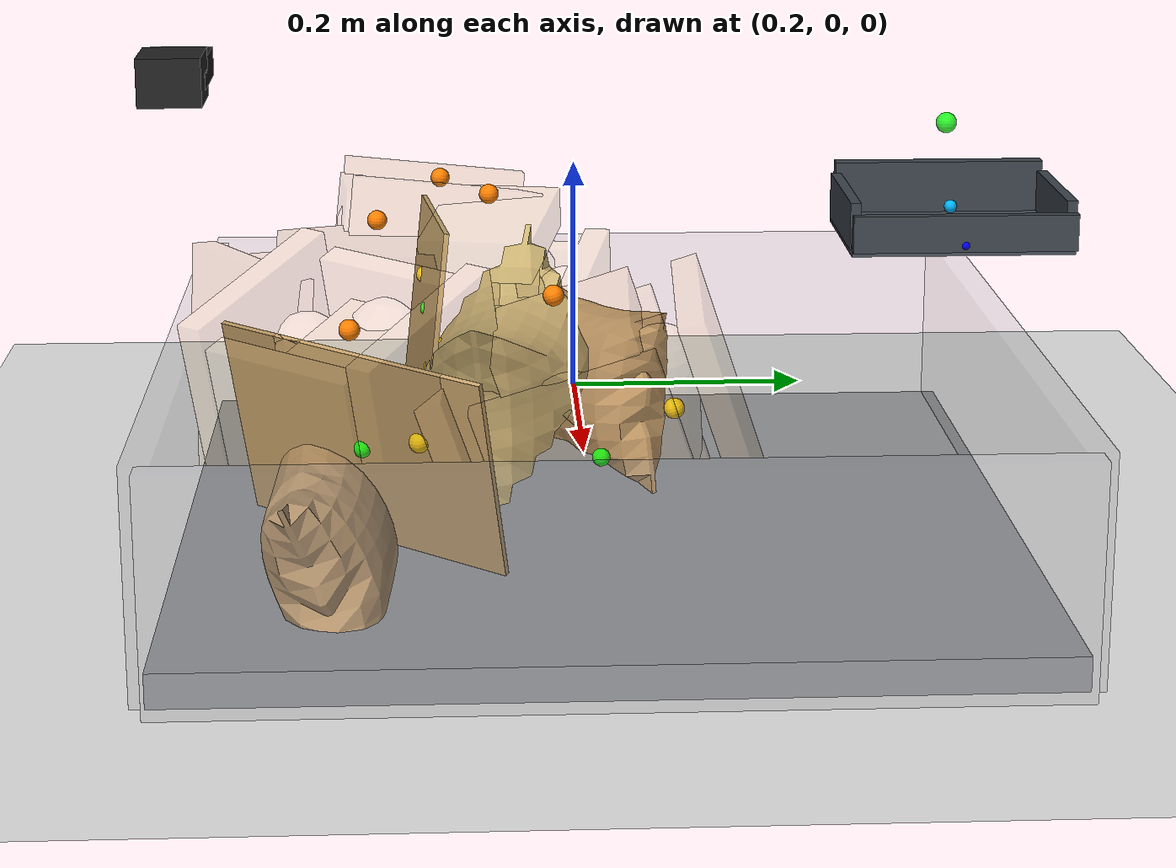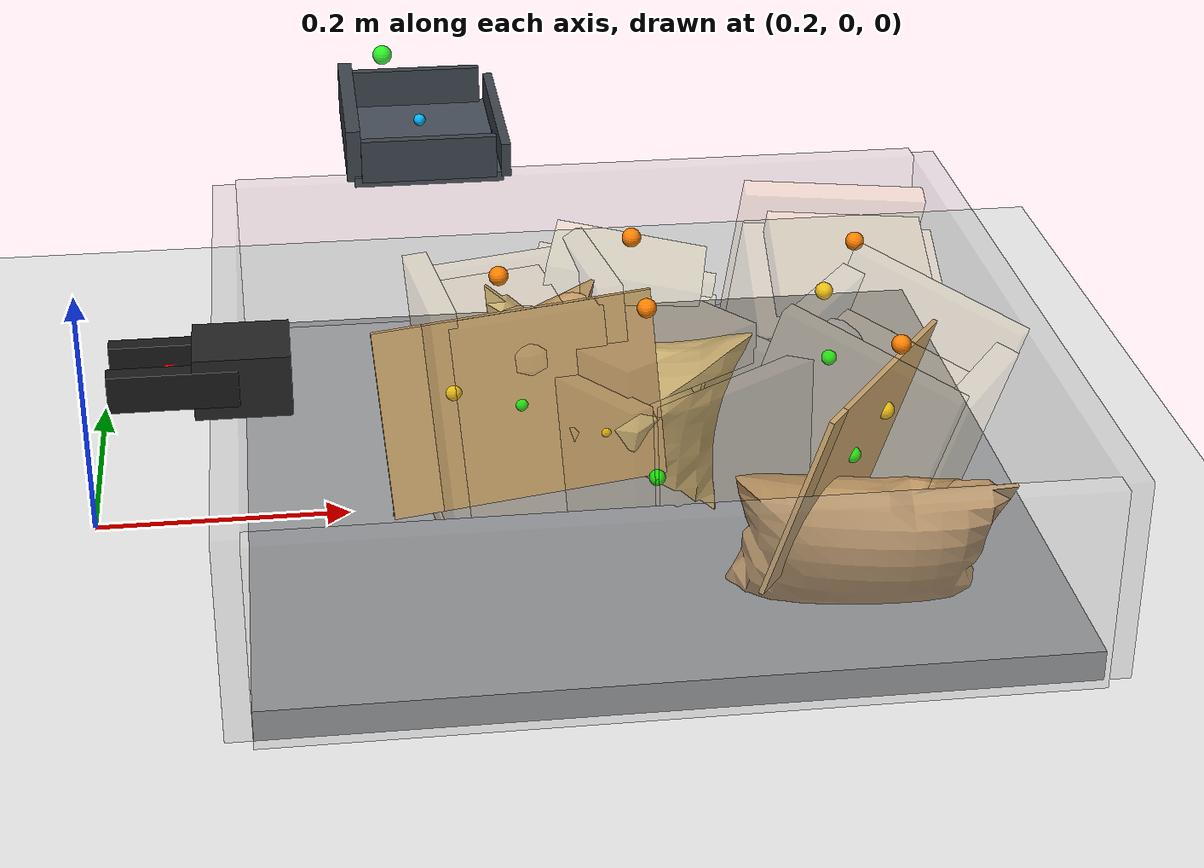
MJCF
<mujoco model="side_bulged_unstable_side_exposed_ep0_try0">
  <compiler angle="radian" coordinate="local" inertiafromgeom="true" meshdir="D:/Michael/2025/01.Research/01.Parceldetection/16.Pybullet/bullet3-master (1)/bullet3-master/examples/pybullet/examples/DeformableTest/Sackcodex2/object"/>
  <option timestep="0.002" gravity="0 0 -9.81" integrator="implicitfast" iterations="100" tolerance="1e-8"/>
  <size memory="768M" nconmax="12000"/>

  <visual>
    <global azimuth="128" elevation="-20"/>
    <headlight ambient="0.34 0.34 0.34" diffuse="0.78 0.78 0.78" specular="0.15 0.15 0.15"/>
    <rgba haze="0.11 0.13 0.18 1"/>
  </visual>

  <default>
    <geom condim="4" friction="1.15 0.03 0.01" margin="0.003" solimp="0.93 0.98 0.003" solref="0.012 1"/>
    <joint damping="1.2" armature="0.002"/>
    <position kp="2500" forcelimited="true" forcerange="-420 420"/>
    <motor ctrllimited="true"/>
  </default>

  <asset>
    <mesh name="sack_0_visual_mesh" file="sack3.obj" scale="0.0717 0.0717 0.0761"/>
    <mesh name="sack_1_visual_mesh" file="sack3.obj" scale="0.0722 0.0722 0.0759"/>
    <mesh name="sack_2_visual_mesh" file="sack2.obj" scale="0.0721 0.0721 0.0753"/>
    <mesh name="sack_3_visual_mesh" file="sack7.obj" scale="0.0738 0.0738 0.0802"/>
    <mesh name="sack_4_visual_mesh" file="sack2.obj" scale="0.0702 0.0702 0.0726"/>
  </asset>

  <worldbody>
    <light name="key" pos="0.85 0.15 1.8" dir="-0.2 -0.1 -1" directional="true"/>
    <geom name="floor" type="plane" size="2 2 0.1" rgba="0.93 0.93 0.93 1"/>
    <geom name="work_pad" type="box" pos="0.62 0 0.012" size="0.30 0.30 0.012" rgba="0.60 0.61 0.62 1" friction="1.4 0.05 0.01"/>
    <geom name="corral_front" type="box" pos="0.93 0.00 0.08" size="0.010 0.30 0.08" rgba="0.55 0.55 0.58 0.22" friction="1.0 0.03 0.01"/>
    <geom name="corral_back" type="box" pos="0.31 0.00 0.08" size="0.010 0.30 0.08" rgba="0.55 0.55 0.58 0.18" friction="1.0 0.03 0.01"/>
    <geom name="corral_left" type="box" pos="0.62 0.30 0.08" size="0.30 0.010 0.08" rgba="0.55 0.55 0.58 0.14" friction="1.0 0.03 0.01"/>
    <geom name="corral_right" type="box" pos="0.62 -0.30 0.08" size="0.30 0.010 0.08" rgba="0.55 0.55 0.58 0.14" friction="1.0 0.03 0.01"/>
    <camera name="overview" pos="1.22 0.00 0.92" xyaxes="0 1 0 -0.46 0 0.88"/>

    <body name="gripper_mocap" mocap="true" pos="0.36 -0.33 0.30" quat="0.707107 0 -0.707107 0"/>
    <body name="scoop_mocap" mocap="true" pos="0.42 0.28 0.20" quat="1 0 0 0"/>

    <body name="gripper_ctrl_base" pos="0.36 -0.33 0.30">
      <inertial pos="0 0 0" mass="0.001" diaginertia="1e-6 1e-6 1e-6"/>
      <joint name="gripper_ctrl_x" type="slide" axis="1 0 0" limited="true" range="0.20 1.00"/>
      <body name="gripper_ctrl_y_body">
        <inertial pos="0 0 0" mass="0.001" diaginertia="1e-6 1e-6 1e-6"/>
        <joint name="gripper_ctrl_y" type="slide" axis="0 1 0" limited="true" range="-0.60 0.60"/>
        <body name="gripper_ctrl_z_body">
          <inertial pos="0 0 0" mass="0.001" diaginertia="1e-6 1e-6 1e-6"/>
          <joint name="gripper_ctrl_z" type="slide" axis="0 0 1" limited="true" range="0.04 0.70"/>
          <body name="gripper_ctrl_yaw_body">
            <inertial pos="0 0 0" mass="0.001" diaginertia="1e-6 1e-6 1e-6"/>
            <joint name="gripper_ctrl_yaw" type="hinge" axis="0 0 1" limited="true" range="-3.1416 3.1416"/>
            <body name="gripper_ctrl_pitch_body">
              <inertial pos="0 0 0" mass="0.001" diaginertia="1e-6 1e-6 1e-6"/>
              <joint name="gripper_ctrl_pitch" type="hinge" axis="0 1 0" limited="true" range="-3.1416 3.1416"/>
              <body name="gripper_ctrl_roll_body">
                <inertial pos="0 0 0" mass="0.001" diaginertia="1e-6 1e-6 1e-6"/>
                <joint name="gripper_ctrl_roll" type="hinge" axis="1 0 0" limited="true" range="-3.1416 3.1416"/>
              </body>
            </body>
          </body>
        </body>
      </body>
    </body>

    <body name="scoop_ctrl_base" pos="0.42 0.28 0.20">
      <inertial pos="0 0 0" mass="0.001" diaginertia="1e-6 1e-6 1e-6"/>
      <joint name="scoop_ctrl_x" type="slide" axis="1 0 0" limited="true" range="0.20 1.00"/>
      <body name="scoop_ctrl_y_body">
        <inertial pos="0 0 0" mass="0.001" diaginertia="1e-6 1e-6 1e-6"/>
        <joint name="scoop_ctrl_y" type="slide" axis="0 1 0" limited="true" range="-0.60 0.60"/>
        <body name="scoop_ctrl_z_body">
          <inertial pos="0 0 0" mass="0.001" diaginertia="1e-6 1e-6 1e-6"/>
          <joint name="scoop_ctrl_z" type="slide" axis="0 0 1" limited="true" range="0.04 0.70"/>
          <body name="scoop_ctrl_yaw_body">
            <inertial pos="0 0 0" mass="0.001" diaginertia="1e-6 1e-6 1e-6"/>
            <joint name="scoop_ctrl_yaw" type="hinge" axis="0 0 1" limited="true" range="-3.1416 3.1416"/>
            <body name="scoop_ctrl_pitch_body">
              <inertial pos="0 0 0" mass="0.001" diaginertia="1e-6 1e-6 1e-6"/>
              <joint name="scoop_ctrl_pitch" type="hinge" axis="0 1 0" limited="true" range="-3.1416 3.1416"/>
              <body name="scoop_ctrl_roll_body">
                <inertial pos="0 0 0" mass="0.001" diaginertia="1e-6 1e-6 1e-6"/>
                <joint name="scoop_ctrl_roll" type="hinge" axis="1 0 0" limited="true" range="-3.1416 3.1416"/>
              </body>
            </body>
          </body>
        </body>
      </body>
    </body>

    <body name="gripper_tool" pos="0.36 -0.33 0.30" quat="0.707107 0 -0.707107 0">
      <freejoint name="gripper_tool_free"/>
      <inertial pos="0 0 0.04" mass="0.08" diaginertia="0.0002 0.0002 0.0002"/>
      <geom name="gripper_palm" type="box" pos="0 0 0.030" size="0.020 0.026 0.030" rgba="0.14 0.14 0.14 1"/>
      <body name="left_finger_body" pos="0 0 0.072">
        <joint name="left_finger_slide" type="slide" axis="0 1 0" limited="true" range="0.010 0.040" damping="12"/>
        <geom name="left_finger_geom" type="box" pos="0 0.020 0" size="0.012 0.006 0.040" rgba="0.10 0.10 0.10 1" friction="2.2 0.05 0.01"/>
      </body>
      <body name="right_finger_body" pos="0 0 0.072">
        <joint name="right_finger_slide" type="slide" axis="0 -1 0" limited="true" range="0.010 0.040" damping="12"/>
        <geom name="right_finger_geom" type="box" pos="0 -0.020 0" size="0.012 0.006 0.040" rgba="0.10 0.10 0.10 1" friction="2.2 0.05 0.01"/>
      </body>
      <site name="gripper_pinch_site" pos="0 0 0.074" size="0.006" rgba="1 0 0 1"/>
    </body>

    <body name="scoop_tool" pos="0.42 0.28 0.20" quat="1 0 0 0">
      <freejoint name="scoop_tool_free"/>
      <inertial pos="0 0 0.02" mass="0.10" diaginertia="0.0003 0.0003 0.0003"/>
      <geom name="scoop_plate" type="box" pos="0.062 0 0" size="0.062 0.085 0.004" rgba="0.28 0.31 0.35 1" friction="1.7 0.05 0.01"/>
      <geom name="scoop_lip" type="box" pos="0.126 0 0.014" size="0.004 0.085 0.014" rgba="0.24 0.27 0.30 1" friction="1.7 0.05 0.01"/>
      <geom name="scoop_left_rail" type="box" pos="0.062 0.082 0.018" size="0.056 0.004 0.018" rgba="0.24 0.27 0.30 1"/>
      <geom name="scoop_right_rail" type="box" pos="0.062 -0.082 0.018" size="0.056 0.004 0.018" rgba="0.24 0.27 0.30 1"/>
      <geom name="scoop_backstop" type="box" pos="0.000 0 0.022" size="0.006 0.082 0.022" rgba="0.24 0.27 0.30 1"/>
      <site name="scoop_tip_site" pos="0.126 0 0.005" size="0.005" rgba="0 0 1 1"/>
      <site name="scoop_center_site" pos="0.060 0 0.020" size="0.005" rgba="0 0.7 1 1"/>
      <site name="score_overlay_site" pos="0.030 0 0.080" size="0.008" rgba="0 1 0 0.8"/>
    </body>

    <body name="sack_0" pos="0.6178 -0.1695 0.1123" euler="-0.0496 -0.0356 -2.5774">
      <freejoint name="sack_0_free"/>

      <geom name="sack_0_visual" type="mesh" mesh="sack_0_visual_mesh" rgba="0.760 0.600 0.400 0.92" contype="0" conaffinity="0"/>
      <site name="sack_0_center_site" pos="0 0 0.000" size="0.006" rgba="0 1 0 1"/>
      <site name="sack_0_top_site" pos="0 -0.0060 0.1314" size="0.007" rgba="1 0.5 0 1"/>
      <site name="sack_0_side_site" pos="0.0000 -0.0581 0.018" size="0.007" rgba="1 0.8 0 1"/>

      <geom name="sack_0_core_geom" type="ellipsoid" pos="0 0 0.0059" size="0.0449 0.0353 0.0790" mass="0.9422" rgba="0.760 0.600 0.400 0.12" friction="1.0 0.03 0.01"/>
      <geom name="sack_0_core_front" type="capsule" fromto="-0.0200 0 -0.0200 0.0450 0 0.0600" size="0.0307" mass="0.2243" rgba="0.760 0.600 0.400 0.10"/>
      <geom name="sack_0_core_left" type="capsule" fromto="-0.008 0.0468 -0.010 0.018 0.0648 0.060" size="0.0243" mass="0.4038" rgba="0.760 0.600 0.400 0.10"/>
      <geom name="sack_0_core_right" type="capsule" fromto="-0.006 -0.0468 -0.008 0.020 -0.0668 0.054" size="0.0223" mass="0.4038" rgba="0.760 0.600 0.400 0.10"/>

      <body name="sack_0_bottom_support_proxy_body" pos="0 0.0071 -0.1014">
        <joint name="sack_0_bottom_x" type="slide" axis="1 0 0" limited="true" range="-0.012 0.012" damping="18" stiffness="481.1"/>
        <joint name="sack_0_bottom_y" type="slide" axis="0 1 0" limited="true" range="-0.012 0.012" damping="18" stiffness="481.1"/>
        <joint name="sack_0_bottom_z" type="slide" axis="0 0 1" limited="true" range="-0.008 0.020" damping="24" stiffness="592.5"/>
        <geom name="sack_0_bottom_support_proxy" type="box" size="0.0757 0.0641 0.0100" mass="0.1795" rgba="0.760 0.600 0.400 0.34" friction="1.55 0.05 0.01"/>
      </body>

      <body name="sack_0_top_grasp_proxy_body" pos="0.0000 -0.0060 0.1014">
        <joint name="sack_0_top_x" type="slide" axis="1 0 0" limited="true" range="-0.018 0.018" damping="12" stiffness="184.9"/>
        <joint name="sack_0_top_y" type="slide" axis="0 1 0" limited="true" range="-0.018 0.018" damping="12" stiffness="184.9"/>
        <joint name="sack_0_top_z" type="slide" axis="0 0 1" limited="true" range="-0.040 0.010" damping="14" stiffness="137.0"/>
        <geom name="sack_0_top_grasp_proxy" type="box" size="0.0597 0.0481 0.0150" mass="0.1346" rgba="0.760 0.600 0.400 0.26" friction="2.2 0.05 0.01"/>
      </body>

      <body name="sack_0_left_side_proxy_body" pos="0 0.0949 0.010">
        <joint name="sack_0_left_side_slide" type="slide" axis="0 -1 0" limited="true" range="-0.028 0.016" damping="16" stiffness="243.7"/>
        <geom name="sack_0_left_side_proxy" type="box" size="0.0717 0.0090 0.0994" mass="0.1346" rgba="0.760 0.600 0.400 0.24"/>
      </body>

      <body name="sack_0_right_side_proxy_body" pos="0 -0.0909 0.010">
        <joint name="sack_0_right_side_slide" type="slide" axis="0 1 0" limited="true" range="-0.028 0.016" damping="16" stiffness="225.9"/>
        <geom name="sack_0_right_side_proxy" type="box" size="0.0717 0.0090 0.0994" mass="0.1346" rgba="0.760 0.600 0.400 0.24"/>
      </body>

      <body name="sack_0_front_proxy_body" pos="0.0657 0 0.000">
        <joint name="sack_0_front_slide" type="slide" axis="-1 0 0" limited="true" range="-0.022 0.012" damping="15" stiffness="230.6"/>
        <geom name="sack_0_front_support_proxy" type="box" size="0.0090 0.0641 0.0974" mass="0.1122" rgba="0.760 0.600 0.400 0.22"/>
      </body>

      <body name="sack_0_back_proxy_body" pos="-0.0657 0 0.000">
        <joint name="sack_0_back_slide" type="slide" axis="1 0 0" limited="true" range="-0.022 0.012" damping="15" stiffness="212.7"/>
        <geom name="sack_0_back_support_proxy" type="box" size="0.0090 0.0641 0.0974" mass="0.1122" rgba="0.760 0.600 0.400 0.22"/>
      </body>

      <body name="sack_0_shape_proxy_body" pos="0.0000 -0.0388 0.0330">
        <joint name="sack_0_bulge_y" type="slide" axis="0 1 0" limited="true" range="-0.020 0.020" damping="8" stiffness="85.9"/>
        <joint name="sack_0_bulge_z" type="slide" axis="0 0 1" limited="true" range="-0.014 0.028" damping="8" stiffness="89.4"/>
        <geom name="sack_0_shape_proxy" type="ellipsoid" size="0.0203 0.0165 0.0261" mass="0.0897" rgba="0.760 0.600 0.400 0.28"/>
      </body>
    </body>

    <body name="sack_1" pos="0.7800 -0.0058 0.1170" euler="0.3233 0.0572 -0.0670">
      <freejoint name="sack_1_free"/>

      <geom name="sack_1_visual" type="mesh" mesh="sack_1_visual_mesh" rgba="0.760 0.600 0.400 0.92" contype="0" conaffinity="0"/>
      <site name="sack_1_center_site" pos="0 0 0.000" size="0.006" rgba="0 1 0 1"/>
      <site name="sack_1_top_site" pos="0 0.0060 0.1186" size="0.007" rgba="1 0.5 0 1"/>
      <site name="sack_1_side_site" pos="0.0000 0.0572 0.018" size="0.007" rgba="1 0.8 0 1"/>

      <geom name="sack_1_core_geom" type="ellipsoid" pos="0 0 0.0058" size="0.0447 0.0349 0.0785" mass="0.9079" rgba="0.760 0.600 0.400 0.12" friction="1.0 0.03 0.01"/>
      <geom name="sack_1_core_front" type="capsule" fromto="-0.0200 0 -0.0200 0.0450 0 0.0600" size="0.0304" mass="0.2162" rgba="0.760 0.600 0.400 0.10"/>
      <geom name="sack_1_core_left" type="capsule" fromto="-0.008 0.0431 -0.010 0.018 0.0611 0.060" size="0.0242" mass="0.3891" rgba="0.760 0.600 0.400 0.10"/>
      <geom name="sack_1_core_right" type="capsule" fromto="-0.006 -0.0431 -0.008 0.020 -0.0631 0.054" size="0.0223" mass="0.3891" rgba="0.760 0.600 0.400 0.10"/>

      <body name="sack_1_bottom_support_proxy_body" pos="0 -0.0047 -0.0862">
        <joint name="sack_1_bottom_x" type="slide" axis="1 0 0" limited="true" range="-0.012 0.012" damping="18" stiffness="472.4"/>
        <joint name="sack_1_bottom_y" type="slide" axis="0 1 0" limited="true" range="-0.012 0.012" damping="18" stiffness="472.4"/>
        <joint name="sack_1_bottom_z" type="slide" axis="0 0 1" limited="true" range="-0.008 0.020" damping="24" stiffness="581.8"/>
        <geom name="sack_1_bottom_support_proxy" type="box" size="0.0754 0.0632 0.0100" mass="0.1729" rgba="0.760 0.600 0.400 0.34" friction="1.55 0.05 0.01"/>
      </body>

      <body name="sack_1_top_grasp_proxy_body" pos="0.0000 0.0060 0.0886">
        <joint name="sack_1_top_x" type="slide" axis="1 0 0" limited="true" range="-0.018 0.018" damping="12" stiffness="181.5"/>
        <joint name="sack_1_top_y" type="slide" axis="0 1 0" limited="true" range="-0.018 0.018" damping="12" stiffness="181.5"/>
        <joint name="sack_1_top_z" type="slide" axis="0 0 1" limited="true" range="-0.040 0.010" damping="14" stiffness="134.1"/>
        <geom name="sack_1_top_grasp_proxy" type="box" size="0.0594 0.0472 0.0150" mass="0.1297" rgba="0.760 0.600 0.400 0.26" friction="2.2 0.05 0.01"/>
      </body>

      <body name="sack_1_left_side_proxy_body" pos="0 0.0903 0.010">
        <joint name="sack_1_left_side_slide" type="slide" axis="0 -1 0" limited="true" range="-0.028 0.016" damping="16" stiffness="237.7"/>
        <geom name="sack_1_left_side_proxy" type="box" size="0.0714 0.0090 0.0842" mass="0.1297" rgba="0.760 0.600 0.400 0.24"/>
      </body>

      <body name="sack_1_right_side_proxy_body" pos="0 -0.0863 0.010">
        <joint name="sack_1_right_side_slide" type="slide" axis="0 1 0" limited="true" range="-0.028 0.016" damping="16" stiffness="220.3"/>
        <geom name="sack_1_right_side_proxy" type="box" size="0.0714 0.0090 0.0842" mass="0.1297" rgba="0.760 0.600 0.400 0.24"/>
      </body>

      <body name="sack_1_front_proxy_body" pos="0.0654 0 0.000">
        <joint name="sack_1_front_slide" type="slide" axis="-1 0 0" limited="true" range="-0.022 0.012" damping="15" stiffness="226.2"/>
        <geom name="sack_1_front_support_proxy" type="box" size="0.0090 0.0632 0.0822" mass="0.1081" rgba="0.760 0.600 0.400 0.22"/>
      </body>

      <body name="sack_1_back_proxy_body" pos="-0.0654 0 0.000">
        <joint name="sack_1_back_slide" type="slide" axis="1 0 0" limited="true" range="-0.022 0.012" damping="15" stiffness="208.8"/>
        <geom name="sack_1_back_support_proxy" type="box" size="0.0090 0.0632 0.0822" mass="0.1081" rgba="0.760 0.600 0.400 0.22"/>
      </body>

      <body name="sack_1_shape_proxy_body" pos="0.0000 0.0351 0.0359">
        <joint name="sack_1_bulge_y" type="slide" axis="0 1 0" limited="true" range="-0.020 0.020" damping="8" stiffness="91.7"/>
        <joint name="sack_1_bulge_z" type="slide" axis="0 0 1" limited="true" range="-0.014 0.028" damping="8" stiffness="93.8"/>
        <geom name="sack_1_shape_proxy" type="ellipsoid" size="0.0202 0.0165 0.0261" mass="0.0865" rgba="0.760 0.600 0.400 0.28"/>
      </body>
    </body>

    <body name="sack_2" pos="0.7623 -0.1660 0.1196" euler="0.1172 0.2744 2.5195">
      <freejoint name="sack_2_free"/>

      <geom name="sack_2_visual" type="mesh" mesh="sack_2_visual_mesh" rgba="0.820 0.670 0.440 0.92" contype="0" conaffinity="0"/>
      <site name="sack_2_center_site" pos="0 0 0.000" size="0.006" rgba="0 1 0 1"/>
      <site name="sack_2_top_site" pos="0 -0.0060 0.0955" size="0.007" rgba="1 0.5 0 1"/>
      <site name="sack_2_side_site" pos="0.0000 -0.0494 0.018" size="0.007" rgba="1 0.8 0 1"/>

      <geom name="sack_2_core_geom" type="ellipsoid" pos="0 0 0.0055" size="0.0455 0.0356 0.0678" mass="0.7869" rgba="0.820 0.670 0.440 0.12" friction="1.0 0.03 0.01"/>
      <geom name="sack_2_core_front" type="capsule" fromto="-0.0200 0 -0.0200 0.0450 0 0.0600" size="0.0301" mass="0.1874" rgba="0.820 0.670 0.440 0.10"/>
      <geom name="sack_2_core_left" type="capsule" fromto="-0.008 0.0302 -0.010 0.018 0.0482 0.060" size="0.0241" mass="0.3372" rgba="0.820 0.670 0.440 0.10"/>
      <geom name="sack_2_core_right" type="capsule" fromto="-0.006 -0.0302 -0.008 0.020 -0.0502 0.054" size="0.0221" mass="0.3372" rgba="0.820 0.670 0.440 0.10"/>

      <body name="sack_2_bottom_support_proxy_body" pos="0 0.0012 -0.1110">
        <joint name="sack_2_bottom_x" type="slide" axis="1 0 0" limited="true" range="-0.012 0.012" damping="18" stiffness="464.4"/>
        <joint name="sack_2_bottom_y" type="slide" axis="0 1 0" limited="true" range="-0.012 0.012" damping="18" stiffness="464.4"/>
        <joint name="sack_2_bottom_z" type="slide" axis="0 0 1" limited="true" range="-0.008 0.020" damping="24" stiffness="572.0"/>
        <geom name="sack_2_bottom_support_proxy" type="box" size="0.0731 0.0554 0.0100" mass="0.1499" rgba="0.820 0.670 0.440 0.34" friction="1.55 0.05 0.01"/>
      </body>

      <body name="sack_2_top_grasp_proxy_body" pos="0.0000 -0.0060 0.0655">
        <joint name="sack_2_top_x" type="slide" axis="1 0 0" limited="true" range="-0.018 0.018" damping="12" stiffness="178.4"/>
        <joint name="sack_2_top_y" type="slide" axis="0 1 0" limited="true" range="-0.018 0.018" damping="12" stiffness="178.4"/>
        <joint name="sack_2_top_z" type="slide" axis="0 0 1" limited="true" range="-0.040 0.010" damping="14" stiffness="131.5"/>
        <geom name="sack_2_top_grasp_proxy" type="box" size="0.0571 0.0394 0.0150" mass="0.1124" rgba="0.820 0.670 0.440 0.26" friction="2.2 0.05 0.01"/>
      </body>

      <body name="sack_2_left_side_proxy_body" pos="0 0.0696 0.010">
        <joint name="sack_2_left_side_slide" type="slide" axis="0 -1 0" limited="true" range="-0.028 0.016" damping="16" stiffness="231.4"/>
        <geom name="sack_2_left_side_proxy" type="box" size="0.0691 0.0090 0.1090" mass="0.1124" rgba="0.820 0.670 0.440 0.24"/>
      </body>

      <body name="sack_2_right_side_proxy_body" pos="0 -0.0656 0.010">
        <joint name="sack_2_right_side_slide" type="slide" axis="0 1 0" limited="true" range="-0.028 0.016" damping="16" stiffness="214.5"/>
        <geom name="sack_2_right_side_proxy" type="box" size="0.0691 0.0090 0.1090" mass="0.1124" rgba="0.820 0.670 0.440 0.24"/>
      </body>

      <body name="sack_2_front_proxy_body" pos="0.0631 0 0.000">
        <joint name="sack_2_front_slide" type="slide" axis="-1 0 0" limited="true" range="-0.022 0.012" damping="15" stiffness="222.2"/>
        <geom name="sack_2_front_support_proxy" type="box" size="0.0090 0.0554 0.1070" mass="0.0937" rgba="0.820 0.670 0.440 0.22"/>
      </body>

      <body name="sack_2_back_proxy_body" pos="-0.0631 0 0.000">
        <joint name="sack_2_back_slide" type="slide" axis="1 0 0" limited="true" range="-0.022 0.012" damping="15" stiffness="205.3"/>
        <geom name="sack_2_back_support_proxy" type="box" size="0.0090 0.0554 0.1070" mass="0.0937" rgba="0.820 0.670 0.440 0.22"/>
      </body>

      <body name="sack_2_shape_proxy_body" pos="0.0000 -0.0222 0.0385">
        <joint name="sack_2_bulge_y" type="slide" axis="0 1 0" limited="true" range="-0.020 0.020" damping="8" stiffness="97.1"/>
        <joint name="sack_2_bulge_z" type="slide" axis="0 0 1" limited="true" range="-0.014 0.028" damping="8" stiffness="97.8"/>
        <geom name="sack_2_shape_proxy" type="ellipsoid" size="0.0201 0.0162 0.0264" mass="0.0749" rgba="0.820 0.670 0.440 0.28"/>
      </body>
    </body>

    <body name="sack_3" pos="0.5912 -0.0663 0.1237" euler="0.0409 0.1486 2.9181">
      <freejoint name="sack_3_free"/>

      <geom name="sack_3_visual" type="mesh" mesh="sack_3_visual_mesh" rgba="0.840 0.740 0.480 0.92" contype="0" conaffinity="0"/>
      <site name="sack_3_center_site" pos="0 0 0.000" size="0.006" rgba="0 1 0 1"/>
      <site name="sack_3_top_site" pos="0 0.0060 0.1396" size="0.007" rgba="1 0.5 0 1"/>
      <site name="sack_3_side_site" pos="0.0000 0.0505 0.018" size="0.007" rgba="1 0.8 0 1"/>

      <geom name="sack_3_core_geom" type="ellipsoid" pos="0 0 0.0060" size="0.0507 0.0427 0.0903" mass="1.0163" rgba="0.840 0.740 0.480 0.12" friction="1.0 0.03 0.01"/>
      <geom name="sack_3_core_front" type="capsule" fromto="-0.0200 0 -0.0200 0.0450 0 0.0600" size="0.0316" mass="0.2420" rgba="0.840 0.740 0.480 0.10"/>
      <geom name="sack_3_core_left" type="capsule" fromto="-0.008 0.0231 -0.010 0.018 0.0411 0.060" size="0.0240" mass="0.4355" rgba="0.840 0.740 0.480 0.10"/>
      <geom name="sack_3_core_right" type="capsule" fromto="-0.006 -0.0231 -0.008 0.020 -0.0431 0.054" size="0.0220" mass="0.4355" rgba="0.840 0.740 0.480 0.10"/>

      <body name="sack_3_bottom_support_proxy_body" pos="0 0.0011 -0.0800">
        <joint name="sack_3_bottom_x" type="slide" axis="1 0 0" limited="true" range="-0.012 0.012" damping="18" stiffness="507.8"/>
        <joint name="sack_3_bottom_y" type="slide" axis="0 1 0" limited="true" range="-0.012 0.012" damping="18" stiffness="507.8"/>
        <joint name="sack_3_bottom_z" type="slide" axis="0 0 1" limited="true" range="-0.008 0.020" damping="24" stiffness="625.1"/>
        <geom name="sack_3_bottom_support_proxy" type="box" size="0.0724 0.0565 0.0100" mass="0.1936" rgba="0.840 0.740 0.480 0.34" friction="1.55 0.05 0.01"/>
      </body>

      <body name="sack_3_top_grasp_proxy_body" pos="0.0000 0.0060 0.1096">
        <joint name="sack_3_top_x" type="slide" axis="1 0 0" limited="true" range="-0.018 0.018" damping="12" stiffness="195.3"/>
        <joint name="sack_3_top_y" type="slide" axis="0 1 0" limited="true" range="-0.018 0.018" damping="12" stiffness="195.3"/>
        <joint name="sack_3_top_z" type="slide" axis="0 0 1" limited="true" range="-0.040 0.010" damping="14" stiffness="145.9"/>
        <geom name="sack_3_top_grasp_proxy" type="box" size="0.0564 0.0405 0.0150" mass="0.1452" rgba="0.840 0.740 0.480 0.26" friction="2.2 0.05 0.01"/>
      </body>

      <body name="sack_3_left_side_proxy_body" pos="0 0.0636 0.010">
        <joint name="sack_3_left_side_slide" type="slide" axis="0 -1 0" limited="true" range="-0.028 0.016" damping="16" stiffness="261.8"/>
        <geom name="sack_3_left_side_proxy" type="box" size="0.0684 0.0090 0.0780" mass="0.1452" rgba="0.840 0.740 0.480 0.24"/>
      </body>

      <body name="sack_3_right_side_proxy_body" pos="0 -0.0596 0.010">
        <joint name="sack_3_right_side_slide" type="slide" axis="0 1 0" limited="true" range="-0.028 0.016" damping="16" stiffness="242.4"/>
        <geom name="sack_3_right_side_proxy" type="box" size="0.0684 0.0090 0.0780" mass="0.1452" rgba="0.840 0.740 0.480 0.24"/>
      </body>

      <body name="sack_3_front_proxy_body" pos="0.0624 0 0.000">
        <joint name="sack_3_front_slide" type="slide" axis="-1 0 0" limited="true" range="-0.022 0.012" damping="15" stiffness="243.9"/>
        <geom name="sack_3_front_support_proxy" type="box" size="0.0090 0.0565 0.0760" mass="0.1210" rgba="0.840 0.740 0.480 0.22"/>
      </body>

      <body name="sack_3_back_proxy_body" pos="-0.0624 0 0.000">
        <joint name="sack_3_back_slide" type="slide" axis="1 0 0" limited="true" range="-0.022 0.012" damping="15" stiffness="224.6"/>
        <geom name="sack_3_back_support_proxy" type="box" size="0.0090 0.0565 0.0760" mass="0.1210" rgba="0.840 0.740 0.480 0.22"/>
      </body>

      <body name="sack_3_shape_proxy_body" pos="0.0000 0.0151 0.0241">
        <joint name="sack_3_bulge_y" type="slide" axis="0 1 0" limited="true" range="-0.020 0.020" damping="8" stiffness="68.1"/>
        <joint name="sack_3_bulge_z" type="slide" axis="0 0 1" limited="true" range="-0.014 0.028" damping="8" stiffness="76.1"/>
        <geom name="sack_3_shape_proxy" type="ellipsoid" size="0.0200 0.0161 0.0260" mass="0.0968" rgba="0.840 0.740 0.480 0.28"/>
      </body>
    </body>

    <body name="sack_4" pos="0.5240 -0.1236 0.1549" euler="-0.1100 -0.0833 -1.4895">
      <freejoint name="sack_4_free"/>

      <geom name="sack_4_visual" type="mesh" mesh="sack_4_visual_mesh" rgba="0.820 0.670 0.440 0.92" contype="0" conaffinity="0"/>
      <site name="sack_4_center_site" pos="0 0 0.000" size="0.006" rgba="0 1 0 1"/>
      <site name="sack_4_top_site" pos="0 -0.0060 0.0995" size="0.007" rgba="1 0.5 0 1"/>
      <site name="sack_4_side_site" pos="0.0000 -0.0483 0.018" size="0.007" rgba="1 0.8 0 1"/>

      <geom name="sack_4_core_geom" type="ellipsoid" pos="0 0 0.0056" size="0.0452 0.0352 0.0673" mass="0.8331" rgba="0.820 0.670 0.440 0.12" friction="1.0 0.03 0.01"/>
      <geom name="sack_4_core_front" type="capsule" fromto="-0.0200 0 -0.0200 0.0450 0 0.0600" size="0.0298" mass="0.1984" rgba="0.820 0.670 0.440 0.10"/>
      <geom name="sack_4_core_left" type="capsule" fromto="-0.008 0.0224 -0.010 0.018 0.0404 0.060" size="0.0240" mass="0.3571" rgba="0.820 0.670 0.440 0.10"/>
      <geom name="sack_4_core_right" type="capsule" fromto="-0.006 -0.0224 -0.008 0.020 -0.0424 0.054" size="0.0220" mass="0.3571" rgba="0.820 0.670 0.440 0.10"/>

      <body name="sack_4_bottom_support_proxy_body" pos="0 -0.0128 -0.0948">
        <joint name="sack_4_bottom_x" type="slide" axis="1 0 0" limited="true" range="-0.012 0.012" damping="18" stiffness="454.4"/>
        <joint name="sack_4_bottom_y" type="slide" axis="0 1 0" limited="true" range="-0.012 0.012" damping="18" stiffness="454.4"/>
        <joint name="sack_4_bottom_z" type="slide" axis="0 0 1" limited="true" range="-0.008 0.020" damping="24" stiffness="559.9"/>
        <geom name="sack_4_bottom_support_proxy" type="box" size="0.0728 0.0543 0.0100" mass="0.1587" rgba="0.820 0.670 0.440 0.34" friction="1.55 0.05 0.01"/>
      </body>

      <body name="sack_4_top_grasp_proxy_body" pos="0.0000 -0.0060 0.0695">
        <joint name="sack_4_top_x" type="slide" axis="1 0 0" limited="true" range="-0.018 0.018" damping="12" stiffness="174.5"/>
        <joint name="sack_4_top_y" type="slide" axis="0 1 0" limited="true" range="-0.018 0.018" damping="12" stiffness="174.5"/>
        <joint name="sack_4_top_z" type="slide" axis="0 0 1" limited="true" range="-0.040 0.010" damping="14" stiffness="128.1"/>
        <geom name="sack_4_top_grasp_proxy" type="box" size="0.0568 0.0383 0.0150" mass="0.1190" rgba="0.820 0.670 0.440 0.26" friction="2.2 0.05 0.01"/>
      </body>

      <body name="sack_4_left_side_proxy_body" pos="0 0.0607 0.010">
        <joint name="sack_4_left_side_slide" type="slide" axis="0 -1 0" limited="true" range="-0.028 0.016" damping="16" stiffness="224.8"/>
        <geom name="sack_4_left_side_proxy" type="box" size="0.0688 0.0090 0.0928" mass="0.1190" rgba="0.820 0.670 0.440 0.24"/>
      </body>

      <body name="sack_4_right_side_proxy_body" pos="0 -0.0567 0.010">
        <joint name="sack_4_right_side_slide" type="slide" axis="0 1 0" limited="true" range="-0.028 0.016" damping="16" stiffness="208.5"/>
        <geom name="sack_4_right_side_proxy" type="box" size="0.0688 0.0090 0.0928" mass="0.1190" rgba="0.820 0.670 0.440 0.24"/>
      </body>

      <body name="sack_4_front_proxy_body" pos="0.0628 0 0.000">
        <joint name="sack_4_front_slide" type="slide" axis="-1 0 0" limited="true" range="-0.022 0.012" damping="15" stiffness="217.2"/>
        <geom name="sack_4_front_support_proxy" type="box" size="0.0090 0.0543 0.0908" mass="0.0992" rgba="0.820 0.670 0.440 0.22"/>
      </body>

      <body name="sack_4_back_proxy_body" pos="-0.0628 0 0.000">
        <joint name="sack_4_back_slide" type="slide" axis="1 0 0" limited="true" range="-0.022 0.012" damping="15" stiffness="200.9"/>
        <geom name="sack_4_back_support_proxy" type="box" size="0.0090 0.0543 0.0908" mass="0.0992" rgba="0.820 0.670 0.440 0.22"/>
      </body>

      <body name="sack_4_shape_proxy_body" pos="0.0000 -0.0144 0.0419">
        <joint name="sack_4_bulge_y" type="slide" axis="0 1 0" limited="true" range="-0.020 0.020" damping="8" stiffness="103.7"/>
        <joint name="sack_4_bulge_z" type="slide" axis="0 0 1" limited="true" range="-0.014 0.028" damping="8" stiffness="102.8"/>
        <geom name="sack_4_shape_proxy" type="ellipsoid" size="0.0200 0.0160 0.0264" mass="0.0793" rgba="0.820 0.670 0.440 0.28"/>
      </body>
    </body>
  </worldbody>

  <equality>
    <weld name="gripper_follow" body1="gripper_mocap" body2="gripper_tool" torquescale="400" solref="0.002 1" solimp="0.99 0.999 0.0001"/>
    <weld name="scoop_follow" body1="scoop_mocap" body2="scoop_tool" torquescale="500" solref="0.002 1" solimp="0.99 0.999 0.0001"/>
  </equality>

  <actuator>
    <position name="gripper_ctrl_x_act" joint="gripper_ctrl_x" ctrlrange="0.20 1.00" kp="3500" forcerange="-300 300"/>
    <position name="gripper_ctrl_y_act" joint="gripper_ctrl_y" ctrlrange="-0.60 0.60" kp="3500" forcerange="-300 300"/>
    <position name="gripper_ctrl_z_act" joint="gripper_ctrl_z" ctrlrange="0.04 0.70" kp="3500" forcerange="-300 300"/>
    <position name="gripper_ctrl_yaw_act" joint="gripper_ctrl_yaw" ctrlrange="-3.1416 3.1416" kp="1800" forcerange="-250 250"/>
    <position name="gripper_ctrl_pitch_act" joint="gripper_ctrl_pitch" ctrlrange="-3.1416 3.1416" kp="1800" forcerange="-250 250"/>
    <position name="gripper_ctrl_roll_act" joint="gripper_ctrl_roll" ctrlrange="-3.1416 3.1416" kp="1800" forcerange="-250 250"/>
    <position name="scoop_ctrl_x_act" joint="scoop_ctrl_x" ctrlrange="0.20 1.00" kp="3500" forcerange="-300 300"/>
    <position name="scoop_ctrl_y_act" joint="scoop_ctrl_y" ctrlrange="-0.60 0.60" kp="3500" forcerange="-300 300"/>
    <position name="scoop_ctrl_z_act" joint="scoop_ctrl_z" ctrlrange="0.04 0.70" kp="3500" forcerange="-300 300"/>
    <position name="scoop_ctrl_yaw_act" joint="scoop_ctrl_yaw" ctrlrange="-3.1416 3.1416" kp="1800" forcerange="-250 250"/>
    <position name="scoop_ctrl_pitch_act" joint="scoop_ctrl_pitch" ctrlrange="-3.1416 3.1416" kp="1800" forcerange="-250 250"/>
    <position name="scoop_ctrl_roll_act" joint="scoop_ctrl_roll" ctrlrange="-3.1416 3.1416" kp="1800" forcerange="-250 250"/>
    <position name="left_finger_act" joint="left_finger_slide" ctrlrange="0.010 0.040" kp="2800" forcerange="-220 220"/>
    <position name="right_finger_act" joint="right_finger_slide" ctrlrange="0.010 0.040" kp="2800" forcerange="-220 220"/>
  </actuator>

  <contact>
    <exclude body1="sack_0_top_grasp_proxy_body" body2="sack_0_left_side_proxy_body"/>
    <exclude body1="sack_0_top_grasp_proxy_body" body2="sack_0_right_side_proxy_body"/>
    <exclude body1="sack_1_top_grasp_proxy_body" body2="sack_1_left_side_proxy_body"/>
    <exclude body1="sack_1_top_grasp_proxy_body" body2="sack_1_right_side_proxy_body"/>
    <exclude body1="sack_2_top_grasp_proxy_body" body2="sack_2_left_side_proxy_body"/>
    <exclude body1="sack_2_top_grasp_proxy_body" body2="sack_2_right_side_proxy_body"/>
    <exclude body1="sack_3_top_grasp_proxy_body" body2="sack_3_left_side_proxy_body"/>
    <exclude body1="sack_3_top_grasp_proxy_body" body2="sack_3_right_side_proxy_body"/>
    <exclude body1="sack_4_top_grasp_proxy_body" body2="sack_4_left_side_proxy_body"/>
    <exclude body1="sack_4_top_grasp_proxy_body" body2="sack_4_right_side_proxy_body"/>
  </contact>
</mujoco>
